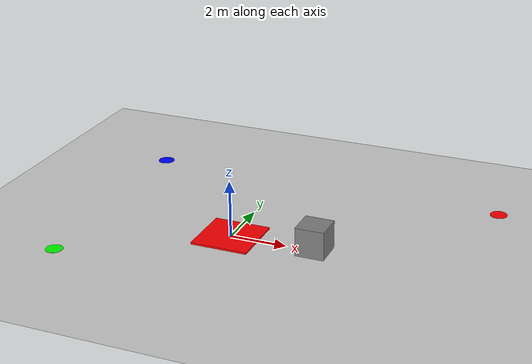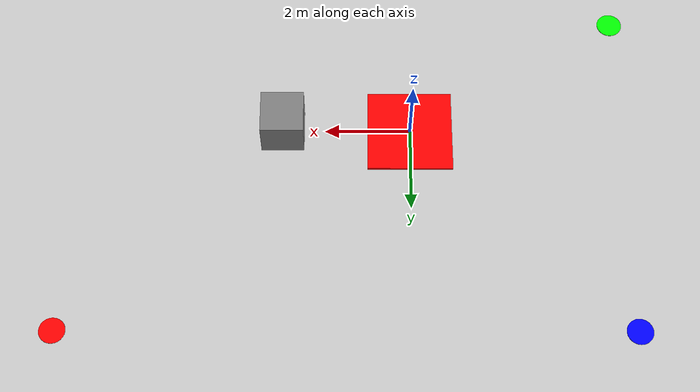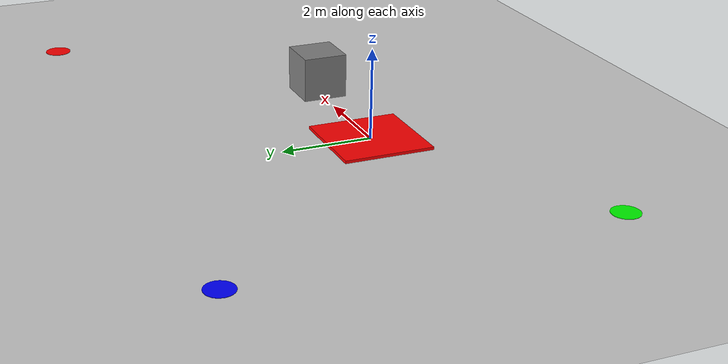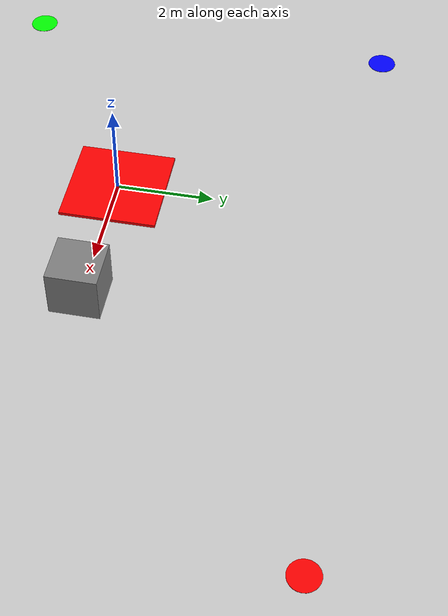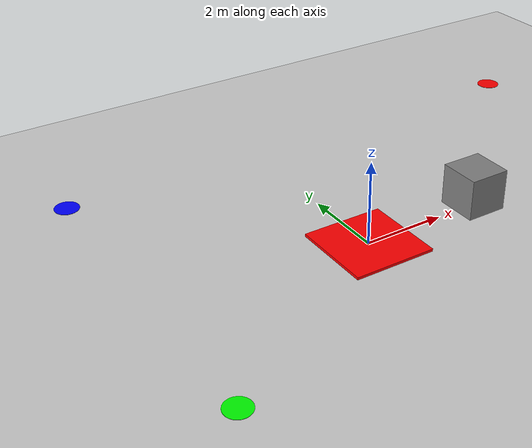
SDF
<?xml version="1.0" ?>
<sdf version="1.6">
  <world name="scene1_world">
    <!-- 插入地面 -->
    <include>
      <uri>model://ground_plane</uri>
    </include>

    <!-- 插入光照 -->
    <include>
      <uri>model://sun</uri>
    </include>

    <!-- 关键目标区域 -->
    <model name="target_area">
      <pose>0 0 0 0 0 0</pose>
      <static>true</static>
      <link name="link">
        <collision name="collision">
          <geometry>
            <box><size>2 2 0.1</size></box>
          </geometry>
        </collision>
        <visual name="visual">
          <geometry>
            <box><size>2 2 0.1</size></box>
          </geometry>
          <material><ambient>1 0 0 1</ambient></material> <!-- 红色表示关键区域 -->
        </visual>
      </link>
    </model>

    <!-- 障碍物示例 -->
    <model name="obstacle_1">
      <pose>3 0 0.5 0 0 0</pose>
      <static>true</static>
      <link name="link">
        <collision name="collision">
          <geometry>
            <box><size>1 1 1</size></box>
          </geometry>
        </collision>
        <visual name="visual">
          <geometry>
            <box><size>1 1 1</size></box>
          </geometry>
          <material><ambient>0.5 0.5 0.5 1</ambient></material>
        </visual>
      </link>
    </model>

    <!-- 合法无人机起飞点 -->
    <model name="start_legit_uav">
      <pose>-5 -3 0 0 0 0</pose>
      <static>true</static>
      <link name="link">
        <visual name="visual">
          <geometry><cylinder><radius>0.3</radius><length>0.01</length></cylinder></geometry>
          <material><ambient>0 1 0 1</ambient></material> <!-- 绿色圆盘 -->
        </visual>
      </link>
    </model>

    <!-- 敌方无人机起飞点 -->
    <model name="start_enemy_uav">
      <pose>8 5 0 0 0 0</pose>
      <static>true</static>
      <link name="link">
        <visual name="visual">
          <geometry><cylinder><radius>0.3</radius><length>0.01</length></cylinder></geometry>
          <material><ambient>1 0 0 1</ambient></material> <!-- 红色圆盘 -->
        </visual>
      </link>
    </model>

    <!-- 己方拦截无人机起飞点 -->
    <model name="start_interceptor_uav">
      <pose>-5 5 0 0 0 0</pose>
      <static>true</static>
      <link name="link">
        <visual name="visual">
          <geometry><cylinder><radius>0.3</radius><length>0.01</length></cylinder></geometry>
          <material><ambient>0 0 1 1</ambient></material> <!-- 蓝色圆盘 -->
        </visual>
      </link>
    </model>

  </world>
</sdf>
